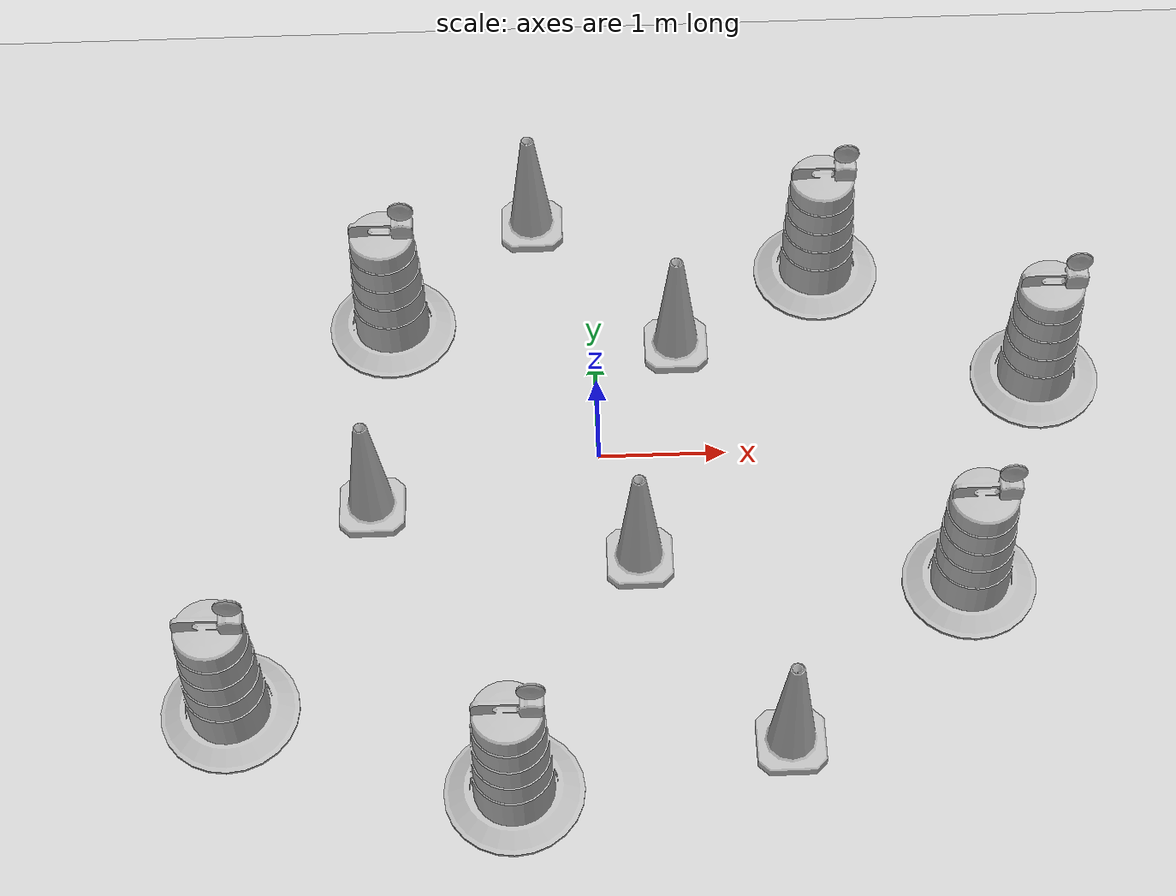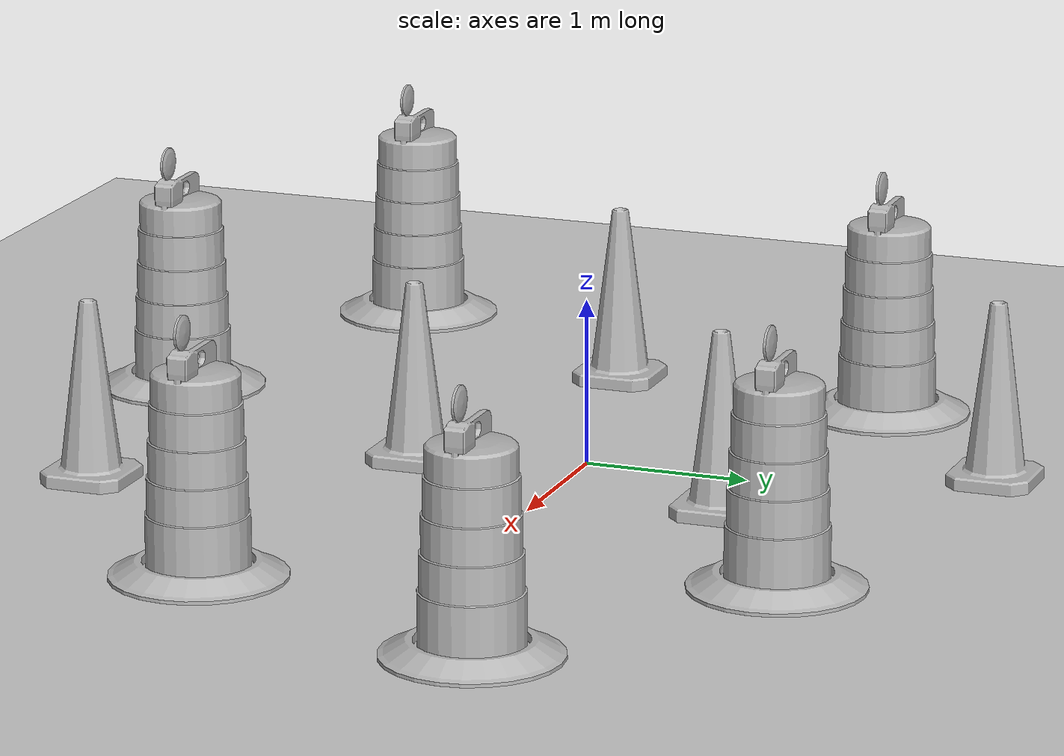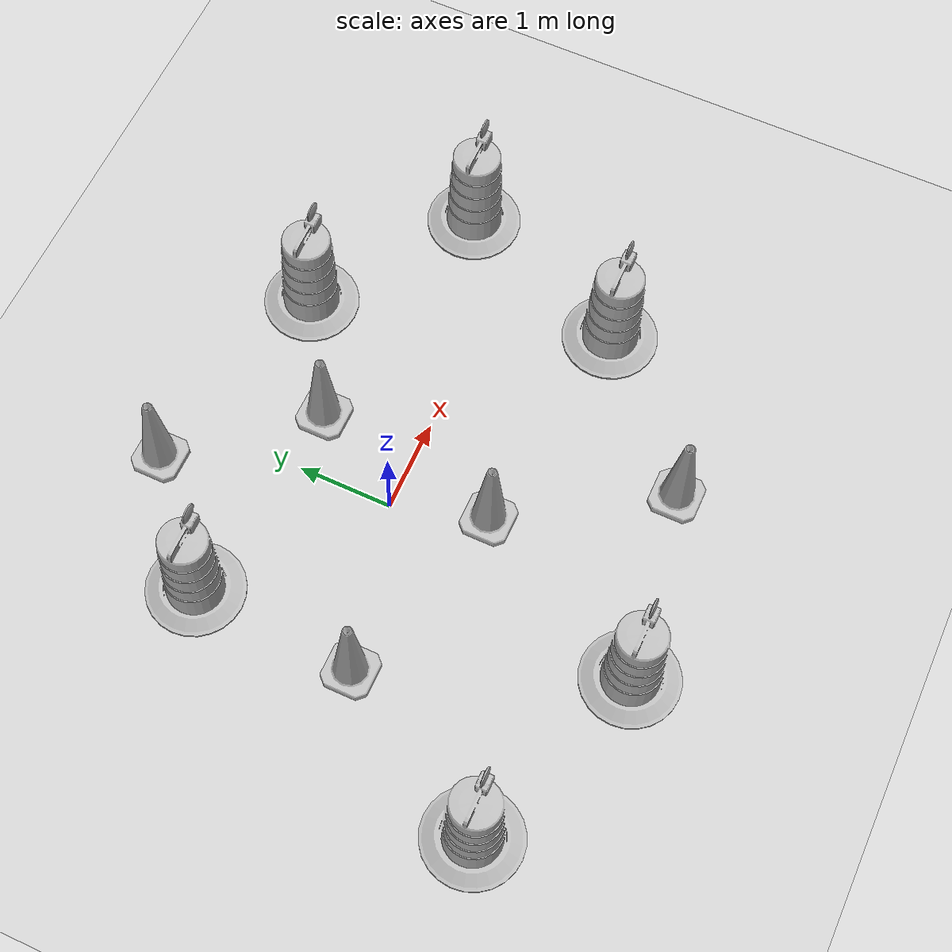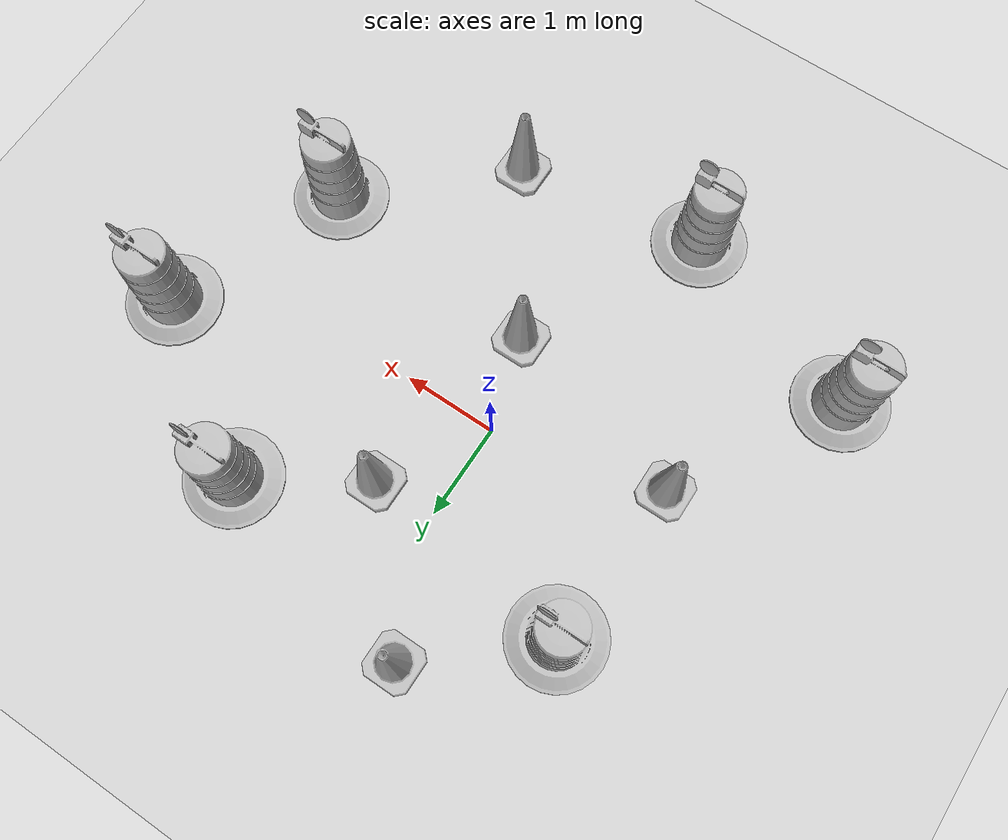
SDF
<sdf version="1.7">
 <world name="default">
  <light name="sun" type="directional">
   <pose>0 0 10 0 -0 0</pose>
   <diffuse>0.8 0.8 0.8 1</diffuse>
   <specular>0.2 0.2 0.2 1</specular>
   <attenuation>
    <range>1000</range>
    <constant>0.9</constant>
    <linear>0.01</linear>
    <quadratic>0.001</quadratic>
   </attenuation>
   <direction>-0.5 0.1 -0.9</direction>
   <spot><inner_angle>0</inner_angle><outer_angle>0</outer_angle><falloff>0</falloff></spot>
  </light>
  <model name="ground_plane">
   <static>1</static>
   <link name="link">
    <collision name="collision">
     <geometry><plane><normal>0 0 1</normal><size>100 100</size></plane></geometry>
     <surface><friction><ode><mu>100</mu><mu2>50</mu2></ode></friction></surface>
    </collision>
    <visual name="visual">
     <cast_shadows>0</cast_shadows>
     <geometry><plane><normal>0 0 1</normal><size>100 100</size></plane></geometry>
     <material>
      <script><uri>file://media/materials/scripts/gazebo.material</uri><name>Gazebo/Grey</name></script>
     </material>
    </visual>
   </link>
  </model>
  <gravity>0 0 -9.8</gravity>
  <magnetic_field>6e-06 2.3e-05 -4.2e-05</magnetic_field>
  <atmosphere type="adiabatic"/>
  <physics type="ode">
   <max_step_size>0.001</max_step_size>
   <real_time_factor>1</real_time_factor>
   <real_time_update_rate>1000</real_time_update_rate>
  </physics>
  <scene><ambient>0.4 0.4 0.4 1</ambient><background>0.7 0.7 0.7 1</background><shadows>1</shadows></scene>
  <audio><device>default</device></audio>
  <spherical_coordinates>
   <surface_model>EARTH_WGS84</surface_model>
   <latitude_deg>0</latitude_deg>
   <longitude_deg>0</longitude_deg>
   <elevation>0</elevation>
   <heading_deg>0</heading_deg>
  </spherical_coordinates>
  <model name="Construction Cone">
   <link name="link">
    <collision name="collision">
     <geometry>
      <mesh><scale>10 10 10</scale><uri>model://construction_cone/meshes/construction_cone.dae</uri></mesh>
     </geometry>
    </collision>
    <visual name="visual">
     <geometry>
      <mesh><scale>10 10 10</scale><uri>model://construction_cone/meshes/construction_cone.dae</uri></mesh>
     </geometry>
    </visual>
    <inertial>
     <inertia><ixx>1</ixx><ixy>0</ixy><ixz>0</ixz><iyy>1</iyy><iyz>0</iyz><izz>1</izz></inertia>
     <mass>1</mass>
    </inertial>
   </link>
   <pose>0.653527 1.05456 -0 0 -0 0</pose>
  </model>
  <model name="Construction Barrel">
   <link name="link">
    <inertial>
     <pose>0 0 0.4 0 -0 0</pose>
     <mass>500</mass>
     <inertia><ixx>51.2096</ixx><iyy>51.2096</iyy><izz>25</izz><ixy>0</ixy><ixz>0</ixz><iyz>0</iyz></inertia>
    </inertial>
    <collision name="collision">
     <geometry><mesh><uri>model://construction_barrel/meshes/construction_barrel.dae</uri></mesh></geometry>
    </collision>
    <visual name="visual">
     <geometry><mesh><uri>model://construction_barrel/meshes/construction_barrel.dae</uri></mesh></geometry>
    </visual>
   </link>
   <pose>1.84418 1.79467 -1e-06 -8e-06 -2e-06 -3.4e-05</pose>
  </model>
  <model name="Construction Cone_0">
   <link name="link">
    <collision name="collision">
     <geometry>
      <mesh><scale>10 10 10</scale><uri>model://construction_cone/meshes/construction_cone.dae</uri></mesh>
     </geometry>
    </collision>
    <visual name="visual">
     <geometry>
      <mesh><scale>10 10 10</scale><uri>model://construction_cone/meshes/construction_cone.dae</uri></mesh>
     </geometry>
    </visual>
    <inertial>
     <inertia><ixx>1</ixx><ixy>0</ixy><ixz>0</ixz><iyy>1</iyy><iyz>0</iyz><izz>1</izz></inertia>
     <mass>1</mass>
    </inertial>
   </link>
   <pose>0.284276 -0.976346 -0 0 -1e-06 0</pose>
  </model>
  <model name="Construction Cone_1">
   <link name="link">
    <collision name="collision">
     <geometry>
      <mesh><scale>10 10 10</scale><uri>model://construction_cone/meshes/construction_cone.dae</uri></mesh>
     </geometry>
    </collision>
    <visual name="visual">
     <geometry>
      <mesh><scale>10 10 10</scale><uri>model://construction_cone/meshes/construction_cone.dae</uri></mesh>
     </geometry>
    </visual>
    <inertial>
     <inertia><ixx>1</ixx><ixy>0</ixy><ixz>0</ixz><iyy>1</iyy><iyz>0</iyz><izz>1</izz></inertia>
     <mass>1</mass>
    </inertial>
   </link>
   <pose>-1.76179 -0.425586 -0 0 -1e-06 0</pose>
  </model>
  <model name="Construction Barrel_0">
   <link name="link">
    <inertial>
     <pose>0 0 0.4 0 -0 0</pose>
     <mass>500</mass>
     <inertia><ixx>51.2096</ixx><iyy>51.2096</iyy><izz>25</izz><ixy>0</ixy><ixz>0</ixz><iyz>0</iyz></inertia>
    </inertial>
    <collision name="collision">
     <geometry><mesh><uri>model://construction_barrel/meshes/construction_barrel.dae</uri></mesh></geometry>
    </collision>
    <visual name="visual">
     <geometry><mesh><uri>model://construction_barrel/meshes/construction_barrel.dae</uri></mesh></geometry>
    </visual>
   </link>
   <pose>-0.690399 -2.91228 -1e-06 1e-06 -9e-06 -4.3e-05</pose>
  </model>
  <model name="Construction Cone_2">
   <link name="link">
    <collision name="collision">
     <geometry>
      <mesh><scale>10 10 10</scale><uri>model://construction_cone/meshes/construction_cone.dae</uri></mesh>
     </geometry>
    </collision>
    <visual name="visual">
     <geometry>
      <mesh><scale>10 10 10</scale><uri>model://construction_cone/meshes/construction_cone.dae</uri></mesh>
     </geometry>
    </visual>
    <inertial>
     <inertia><ixx>1</ixx><ixy>0</ixy><ixz>0</ixz><iyy>1</iyy><iyz>0</iyz><izz>1</izz></inertia>
     <mass>1</mass>
    </inertial>
   </link>
   <pose>-0.490695 2.3649 -1e-05 -1e-06 0 0</pose>
  </model>
  <model name="Construction Barrel_1">
   <link name="link">
    <inertial>
     <pose>0 0 0.4 0 -0 0</pose>
     <mass>500</mass>
     <inertia><ixx>51.2096</ixx><iyy>51.2096</iyy><izz>25</izz><ixy>0</ixy><ixz>0</ixz><iyz>0</iyz></inertia>
    </inertial>
    <collision name="collision">
     <geometry><mesh><uri>model://construction_barrel/meshes/construction_barrel.dae</uri></mesh></geometry>
    </collision>
    <visual name="visual">
     <geometry><mesh><uri>model://construction_barrel/meshes/construction_barrel.dae</uri></mesh></geometry>
    </visual>
   </link>
   <pose>-1.63539 1.34637 -2e-06 7e-06 -4e-06 -4.3e-05</pose>
  </model>
  <model name="Construction Barrel_2">
   <link name="link">
    <inertial>
     <pose>0 0 0.4 0 -0 0</pose>
     <mass>500</mass>
     <inertia><ixx>51.2096</ixx><iyy>51.2096</iyy><izz>25</izz><ixy>0</ixy><ixz>0</ixz><iyz>0</iyz></inertia>
    </inertial>
    <collision name="collision">
     <geometry><mesh><uri>model://construction_barrel/meshes/construction_barrel.dae</uri></mesh></geometry>
    </collision>
    <visual name="visual">
     <geometry><mesh><uri>model://construction_barrel/meshes/construction_barrel.dae</uri></mesh></geometry>
    </visual>
   </link>
   <pose>2.77239 -1.27683 -0 0 0 -3.6e-05</pose>
  </model>
  <model name="Construction Barrel_3">
   <link name="link">
    <inertial>
     <pose>0 0 0.4 0 -0 0</pose>
     <mass>500</mass>
     <inertia><ixx>51.2096</ixx><iyy>51.2096</iyy><izz>25</izz><ixy>0</ixy><ixz>0</ixz><iyz>0</iyz></inertia>
    </inertial>
    <collision name="collision">
     <geometry><mesh><uri>model://construction_barrel/meshes/construction_barrel.dae</uri></mesh></geometry>
    </collision>
    <visual name="visual">
     <geometry><mesh><uri>model://construction_barrel/meshes/construction_barrel.dae</uri></mesh></geometry>
    </visual>
   </link>
   <pose>3.5149 0.638775 0 1e-06 1e-06 -3.4e-05</pose>
  </model>
  <model name="Construction Cone_3">
   <link name="link">
    <collision name="collision">
     <geometry>
      <mesh><scale>10 10 10</scale><uri>model://construction_cone/meshes/construction_cone.dae</uri></mesh>
     </geometry>
    </collision>
    <visual name="visual">
     <geometry>
      <mesh><scale>10 10 10</scale><uri>model://construction_cone/meshes/construction_cone.dae</uri></mesh>
     </geometry>
    </visual>
    <inertial>
     <inertia><ixx>1</ixx><ixy>0</ixy><ixz>0</ixz><iyy>1</iyy><iyz>0</iyz><izz>1</izz></inertia>
     <mass>1</mass>
    </inertial>
   </link>
   <pose>1.32106 -2.60462 0 -0 -0 -0</pose>
  </model>
  <model name="Construction Barrel_4">
   <link name="link">
    <inertial>
     <pose>0 0 0.4 0 -0 0</pose>
     <mass>500</mass>
     <inertia><ixx>51.2096</ixx><iyy>51.2096</iyy><izz>25</izz><ixy>0</ixy><ixz>0</ixz><iyz>0</iyz></inertia>
    </inertial>
    <collision name="collision">
     <geometry><mesh><uri>model://construction_barrel/meshes/construction_barrel.dae</uri></mesh></geometry>
    </collision>
    <visual name="visual">
     <geometry><mesh><uri>model://construction_barrel/meshes/construction_barrel.dae</uri></mesh></geometry>
    </visual>
   </link>
   <pose>-2.76315 -2.17199 -2e-06 0 7e-06 -2.8e-05</pose>
  </model>
 </world>
</sdf>
